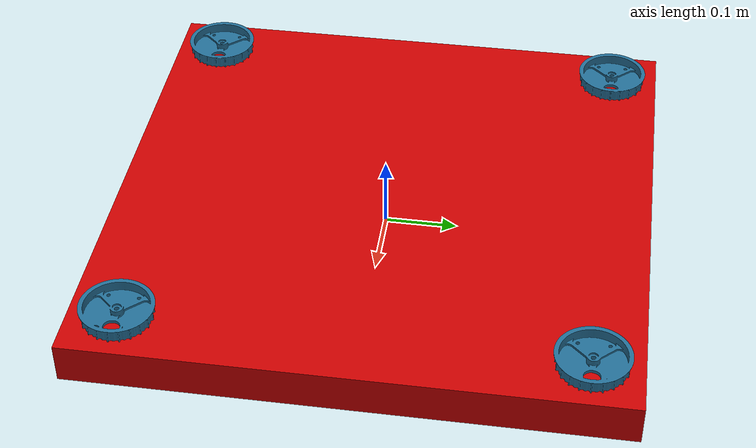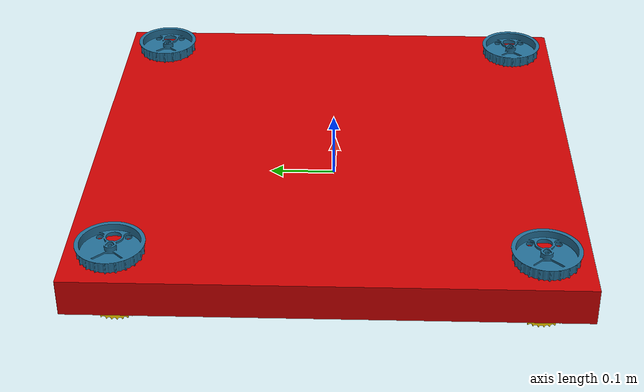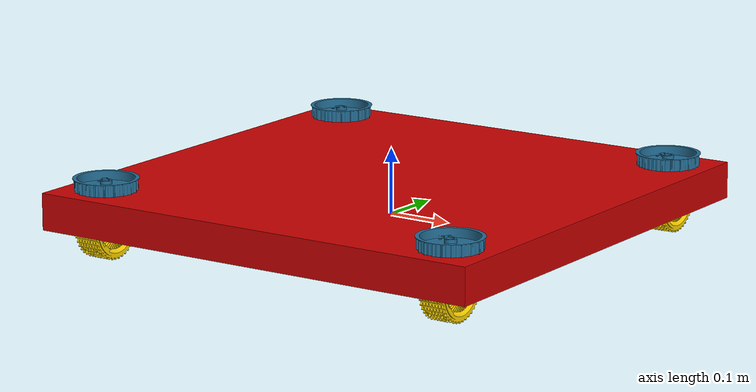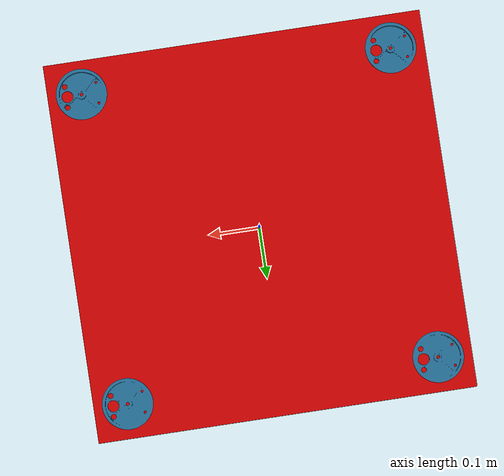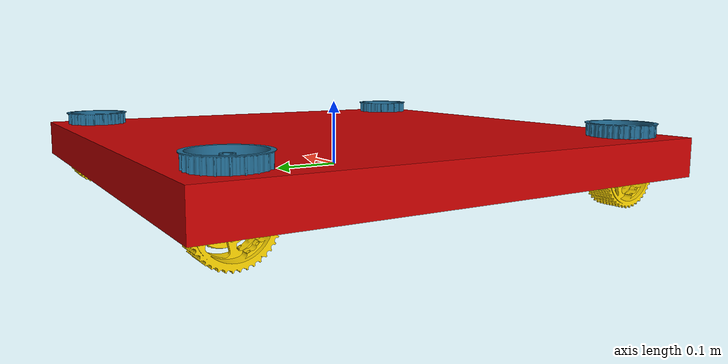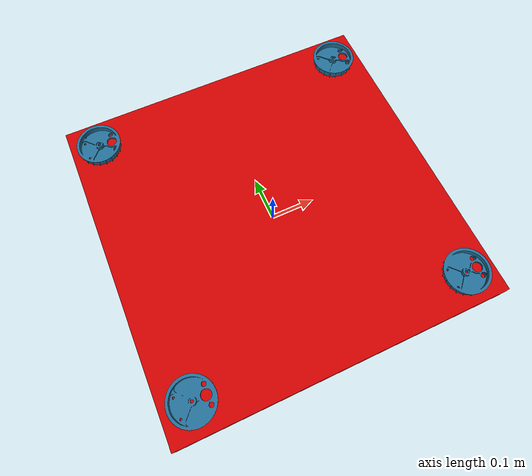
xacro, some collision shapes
<?xml version="1.0"?>
<robot name="swerve" xmlns:xacro="http://www.ros.org/wiki/xacro">

  <!-- Args -->
  <xacro:arg name="hw_interface_plugin" default="swerve_hardware/IsaacDriveHardware"/>

  <!-- Include Files -->
  <xacro:include filename="$(find swerve_description)/urdf/control/drive.xacro" />
  <xacro:include filename="$(find swerve_description)/urdf/util/macros.xacro" />
  <xacro:include filename="$(find swerve_description)/urdf/util/materials.xacro" />
  <xacro:include filename="$(find swerve_description)/urdf/parts/square_chassis.xacro" />
  <xacro:include filename="$(find swerve_description)/urdf/parts/swerve_axle.xacro" />

    <!-- Axle Position Variables -->
    <xacro:property name="axle_pos" value="${301.625 / 1000}" />
    <xacro:property name="axle_pos_y" value="${69.056 / 1000}" />

  <xacro:square_chassis prefix="swerve" />
  <xacro:swerve_axle prefix="front_left" parent="swerve_chassis_link">
    <origin xyz="${axle_pos} ${axle_pos_y} ${axle_pos}" rpy="${pi / 2} 0 0" />
  </xacro:swerve_axle>
  <xacro:swerve_axle prefix="front_right" parent="swerve_chassis_link">
    <origin xyz="-${axle_pos} ${axle_pos_y} ${axle_pos}" rpy="${pi / 2} 0 0" />
  </xacro:swerve_axle>
  <xacro:swerve_axle prefix="rear_left" parent="swerve_chassis_link">
    <origin xyz="${axle_pos} ${axle_pos_y} -${axle_pos}" rpy="${pi / 2} 0 0" />
  </xacro:swerve_axle>
  <xacro:swerve_axle prefix="rear_right" parent="swerve_chassis_link">
    <origin xyz="-${axle_pos} ${axle_pos_y} -${axle_pos}" rpy="${pi / 2} 0 0" />
  </xacro:swerve_axle>

  <xacro:swerve_drive_control plugin="$(arg hw_interface_plugin)" />
</robot>

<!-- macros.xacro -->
<robot xmlns:xacro="http://www.ros.org/wiki/xacro">

  <!-- Specify some standard inertial calculations https://en.wikipedia.org/wiki/List_of_moments_of_inertia -->
  <!-- These make use of xacro's mathematical functionality -->

  <xacro:macro name="inertial_sphere" params="mass radius *origin">
    <inertial>
      <xacro:insert_block name="origin" />
      <mass value="${mass}" />
      <inertia ixx="${(2/5) * mass * (radius*radius)}" ixy="0.0" ixz="0.0" iyy="${(2/5) * mass * (radius*radius)}" iyz="0.0" izz="${(2/5) * mass * (radius*radius)}" />
    </inertial>
  </xacro:macro>

  <xacro:macro name="inertial_box" params="mass x y z *origin">
    <inertial>
      <xacro:insert_block name="origin" />
      <mass value="${mass}" />
      <inertia ixx="${(1/12) * mass * (y*y+z*z)}" ixy="0.0" ixz="0.0" iyy="${(1/12) * mass * (x*x+z*z)}" iyz="0.0" izz="${(1/12) * mass * (x*x+y*y)}" />
    </inertial>
  </xacro:macro>

  <xacro:macro name="inertial_cylinder" params="mass length radius *origin">
    <inertial>
      <xacro:insert_block name="origin" />
      <mass value="${mass}" />
      <inertia ixx="${(1/12) * mass * (3*radius*radius + length*length)}" ixy="0.0" ixz="0.0" iyy="${(1/12) * mass * (3*radius*radius + length*length)}" iyz="0.0" izz="${(1/2) * mass * (radius*radius)}" />
    </inertial>
  </xacro:macro>

</robot>

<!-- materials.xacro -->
<robot>
  <material name="black">
    <color rgba="0.0 0.0 0.0 1.0" />
  </material>

  <material name="blue">
    <color rgba="${35/255} ${110/255} ${150/255} 1.0" />
  </material>

  <material name="green">
    <color rgba="0.0 0.8 0.0 1.0" />
  </material>

  <material name="grey">
    <color rgba="0.2 0.2 0.2 1.0" />
  </material>

  <material name="yellow">
    <color rgba="${255/255} ${215/255} ${0/255} 1" />
  </material>

  <material name="orange">
    <color rgba="${243/255} ${135/255} ${47/255} 1" />
  </material>

  <material name="brown">
    <color rgba="${222/255} ${207/255} ${195/255} 1.0" />
  </material>

  <material name="red">
    <color rgba="0.8 0.0 0.0 1.0" />
  </material>

  <material name="white">
    <color rgba="1.0 1.0 1.0 1.0" />
  </material>

  <material name="silver">
    <color rgba="0.700 0.700 0.700 1.000" />
  </material>

</robot>

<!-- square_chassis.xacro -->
<robot xmlns:xacro="http://www.ros.org/wiki/xacro">

  <!-- Chassis Properties -->
  <xacro:property name="chassis_length" value=".7366" />
  <xacro:property name="chassis_width" value=".7366" />
  <xacro:property name="chassis_height" value="0.05588" />
  <xacro:property name="chassis_weight" value="19.0508795" />

  <xacro:macro name="square_chassis" params="prefix">
    <link name="base_link"></link>

    <link name="${prefix}_chassis_link">
      <xacro:inertial_box mass="${chassis_weight}" x="${chassis_length}" y="${chassis_width}" z="${chassis_height}">
        <origin xyz="0 0 0" rpy="0 0 0" />
      </xacro:inertial_box>
      <visual>
        <origin xyz="0.061605 -0.34976 -0.53866" rpy="0 0 0" />
        <geometry>
          <mesh filename="package://swerve_description/meshes/SwerveChassis.stl" scale="0.001 0.001 0.001" />
        </geometry>
        <material name="red"/>
      </visual>
      <collision>
        <origin xyz="0 ${chassis_height/2} 0" rpy="0 0 0" />
        <geometry>
          <box size="${chassis_length} ${chassis_height} ${chassis_width}" />
        </geometry>
      </collision>
    </link>

    <joint name="${prefix}_chassis_joint" type="fixed">
      <parent link="base_link" />
      <child link="${prefix}_chassis_link" />
      <origin xyz="0 0 0" rpy="${pi / 2} 0 0" />
    </joint>
  </xacro:macro>

</robot>

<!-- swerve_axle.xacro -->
<robot xmlns:xacro="http://www.ros.org/wiki/xacro">

    <!-- Chassis Properties -->
    <xacro:property name="axle_radius" value="0.075" />
    <xacro:property name="axle_length" value=".1" />
    <xacro:property name="axle_mass" value="0.23739" />
    <xacro:property name="wheel_radius" value="0.0508" />
    <xacro:property name="wheel_length" value="0.0381" />
    <xacro:property name="wheel_mass" value="0.23133211" />

    <!-- Wheel Properties -->
    <!-- NOTE: The below values are **guesses**-->
    <!-- NOTE: Pretty good **guesses**-->
    <xacro:property name="wheel_pos_x" value="-0.022"/>
    <xacro:property name="wheel_pos_y" value="0.065"/>

    <xacro:macro name="swerve_axle" params="prefix parent *origin">
        <link name="${prefix}_axle_link">
            <visual>
                <origin xyz="0 0 0" rpy="0 0 0" />
                <geometry>
                    <mesh filename="package://swerve_description/meshes/SwerveAxle.stl" scale="0.001 0.001 0.001" />
                </geometry>
                <material name="blue" />
            </visual>
            <collision>
                <origin xyz="0 0 0" rpy="0 0 0"/>
                <geometry>
                    <cylinder  length="${axle_length/2}" radius="0.05"/>
                </geometry>
            </collision>
            <xacro:inertial_cylinder mass="${axle_mass}" radius="${axle_radius}" length="${wheel_length}" >
                <origin xyz="0 0 0" rpy="0 0 0" />
            </xacro:inertial_cylinder>
        </link>

        <joint name="${prefix}_axle_joint" type="continuous">
            <parent link="${parent}" />
            <child link="${prefix}_axle_link" />
            <xacro:insert_block name="origin" />
            <axis xyz="0 0 1" />
            <dynamics friction="0.1" />
        </joint>

        <link name="${prefix}_wheel_link">
            <visual>
                <origin xyz="0 0 0" rpy="0 ${pi / 4} 0" />

                <geometry>
                    <mesh filename="package://swerve_description/meshes/SwerveWheel.stl" scale="0.001 0.001 0.001" />
                </geometry>
                <material name="yellow" />
            </visual>
            <collision>
                <origin xyz="0.021 0 0" rpy="0 ${pi / 2} 0"/>
                <geometry>
                    <cylinder  length="${wheel_length}" radius="${wheel_radius}"/>
                </geometry>
            </collision>
            <xacro:inertial_cylinder mass="${wheel_mass}" radius="${wheel_radius}" length="${wheel_length}" >
                <origin xyz="0 0 0" rpy="0 ${pi / 2} 0" />
            </xacro:inertial_cylinder>
        </link>

        <joint name="${prefix}_wheel_joint" type="continuous">
            <parent link="${prefix}_axle_link" />
            <child link="${prefix}_wheel_link" />
            <origin xyz="${wheel_pos_x} 0 ${wheel_pos_y}" rpy="0 0 0"/>
            <axis xyz="1 0 0" />
            <dynamics friction="0.1" />
        </joint>

    </xacro:macro>

</robot>
